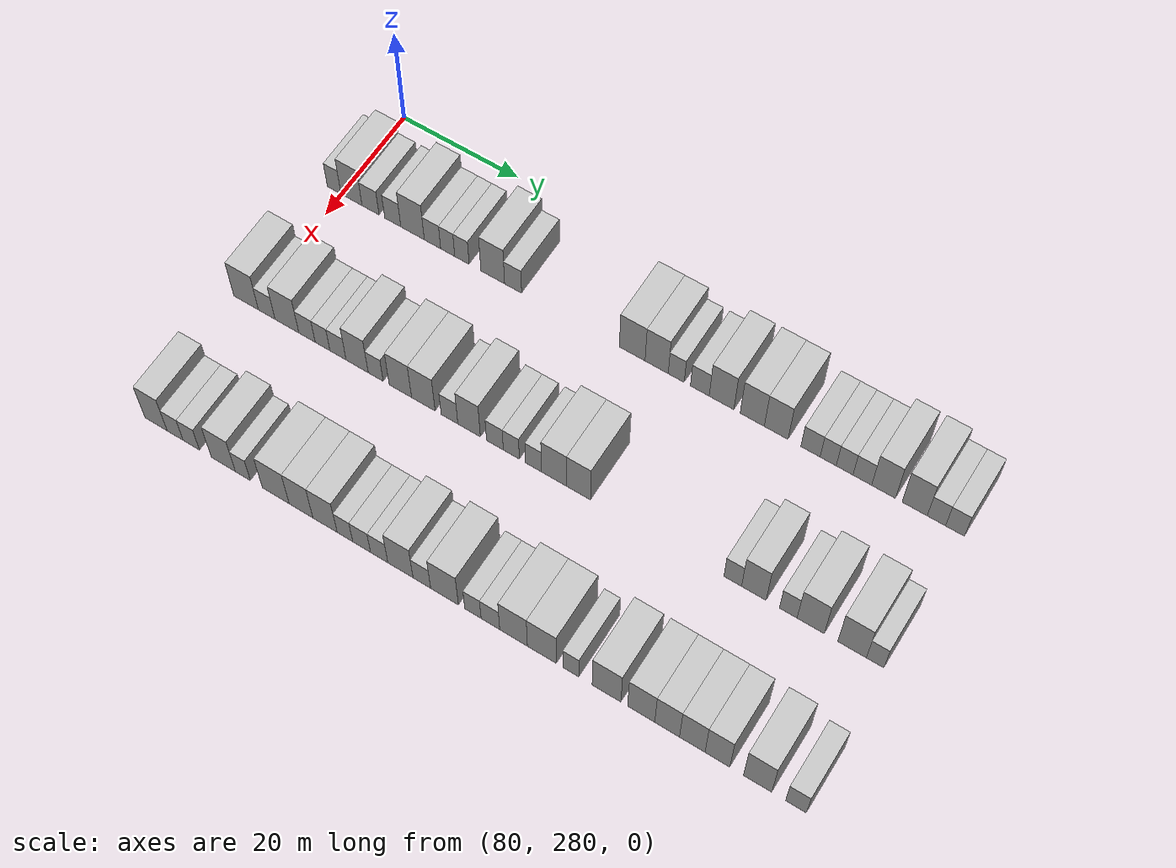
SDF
<sdf version="1.6">
 <world name="default">
  <model name="building_725">
   <static>1</static>
   <pose>91.0000 278.5867 0 0.000000 0.000000 0.000000</pose>
   <link name="link">
    <pose>0 0 3.00 0 0 0</pose>
    <collision name="collision"><geometry><box><size>10.0000 2.4089 6.0000</size></box></geometry></collision>
    <visual name="visual">
     <cast_shadows>0</cast_shadows>
     <geometry><box><size>10.0000 2.4089 6.0000</size></box></geometry>
     <material>
      <script>
       <uri>model://HANNAS_wall/materials/scripts</uri>
       <uri>model://HANNAS_wall/materials/textures</uri>
       <name>vrc/HANNAS_wall</name>
      </script>
     </material>
    </visual>
   </link>
  </model>
  <model name="building_726">
   <static>1</static>
   <pose>91.0000 281.6476 0 0.000000 0.000000 0.000000</pose>
   <link name="link">
    <pose>0 0 4.50 0 0 0</pose>
    <collision name="collision"><geometry><box><size>10.0000 3.7130 9.0000</size></box></geometry></collision>
    <visual name="visual">
     <cast_shadows>0</cast_shadows>
     <geometry><box><size>10.0000 3.7130 9.0000</size></box></geometry>
     <material>
      <script>
       <uri>model://HANNAS_wall/materials/scripts</uri>
       <uri>model://HANNAS_wall/materials/textures</uri>
       <name>vrc/HANNAS_wall</name>
      </script>
     </material>
    </visual>
   </link>
  </model>
  <model name="building_727">
   <static>1</static>
   <pose>91.0000 284.9907 0 0.000000 0.000000 0.000000</pose>
   <link name="link">
    <pose>0 0 3.00 0 0 0</pose>
    <collision name="collision"><geometry><box><size>10.0000 2.9732 6.0000</size></box></geometry></collision>
    <visual name="visual">
     <cast_shadows>0</cast_shadows>
     <geometry><box><size>10.0000 2.9732 6.0000</size></box></geometry>
     <material>
      <script>
       <uri>model://HANNAS_wall/materials/scripts</uri>
       <uri>model://HANNAS_wall/materials/textures</uri>
       <name>vrc/HANNAS_wall</name>
      </script>
     </material>
    </visual>
   </link>
  </model>
  <model name="building_728">
   <static>1</static>
   <pose>91.0000 288.8770 0 0.000000 0.000000 0.000000</pose>
   <link name="link">
    <pose>0 0 3.00 0 0 0</pose>
    <collision name="collision"><geometry><box><size>10.0000 2.7993 6.0000</size></box></geometry></collision>
    <visual name="visual">
     <cast_shadows>0</cast_shadows>
     <geometry><box><size>10.0000 2.7993 6.0000</size></box></geometry>
     <material>
      <script>
       <uri>model://HANNAS_wall/materials/scripts</uri>
       <uri>model://HANNAS_wall/materials/textures</uri>
       <name>vrc/HANNAS_wall</name>
      </script>
     </material>
    </visual>
   </link>
  </model>
  <model name="building_729">
   <static>1</static>
   <pose>91.0000 292.3071 0 0.000000 0.000000 0.000000</pose>
   <link name="link">
    <pose>0 0 4.50 0 0 0</pose>
    <collision name="collision"><geometry><box><size>10.0000 4.0610 9.0000</size></box></geometry></collision>
    <visual name="visual">
     <cast_shadows>0</cast_shadows>
     <geometry><box><size>10.0000 4.0610 9.0000</size></box></geometry>
     <material>
      <script>
       <uri>model://HANNAS_wall/materials/scripts</uri>
       <uri>model://HANNAS_wall/materials/textures</uri>
       <name>vrc/HANNAS_wall</name>
      </script>
     </material>
    </visual>
   </link>
  </model>
  <model name="building_730">
   <static>1</static>
   <pose>91.0000 295.7476 0 0.000000 0.000000 0.000000</pose>
   <link name="link">
    <pose>0 0 3.00 0 0 0</pose>
    <collision name="collision"><geometry><box><size>10.0000 2.8199 6.0000</size></box></geometry></collision>
    <visual name="visual">
     <cast_shadows>0</cast_shadows>
     <geometry><box><size>10.0000 2.8199 6.0000</size></box></geometry>
     <material>
      <script>
       <uri>model://HANNAS_wall/materials/scripts</uri>
       <uri>model://HANNAS_wall/materials/textures</uri>
       <name>vrc/HANNAS_wall</name>
      </script>
     </material>
    </visual>
   </link>
  </model>
  <model name="building_731">
   <static>1</static>
   <pose>91.0000 298.3624 0 0.000000 0.000000 0.000000</pose>
   <link name="link">
    <pose>0 0 3.00 0 0 0</pose>
    <collision name="collision"><geometry><box><size>10.0000 2.4097 6.0000</size></box></geometry></collision>
    <visual name="visual">
     <cast_shadows>0</cast_shadows>
     <geometry><box><size>10.0000 2.4097 6.0000</size></box></geometry>
     <material>
      <script>
       <uri>model://HANNAS_wall/materials/scripts</uri>
       <uri>model://HANNAS_wall/materials/textures</uri>
       <name>vrc/HANNAS_wall</name>
      </script>
     </material>
    </visual>
   </link>
  </model>
  <model name="building_732">
   <static>1</static>
   <pose>91.0000 300.7941 0 0.000000 0.000000 0.000000</pose>
   <link name="link">
    <pose>0 0 3.00 0 0 0</pose>
    <collision name="collision"><geometry><box><size>10.0000 2.4537 6.0000</size></box></geometry></collision>
    <visual name="visual">
     <cast_shadows>0</cast_shadows>
     <geometry><box><size>10.0000 2.4537 6.0000</size></box></geometry>
     <material>
      <script>
       <uri>model://HANNAS_wall/materials/scripts</uri>
       <uri>model://HANNAS_wall/materials/textures</uri>
       <name>vrc/HANNAS_wall</name>
      </script>
     </material>
    </visual>
   </link>
  </model>
  <model name="building_733">
   <static>1</static>
   <pose>91.0000 306.0276 0 0.000000 0.000000 0.000000</pose>
   <link name="link">
    <pose>0 0 4.50 0 0 0</pose>
    <collision name="collision"><geometry><box><size>10.0000 4.0134 9.0000</size></box></geometry></collision>
    <visual name="visual">
     <cast_shadows>0</cast_shadows>
     <geometry><box><size>10.0000 4.0134 9.0000</size></box></geometry>
     <material>
      <script>
       <uri>model://HANNAS_wall/materials/scripts</uri>
       <uri>model://HANNAS_wall/materials/textures</uri>
       <name>vrc/HANNAS_wall</name>
      </script>
     </material>
    </visual>
   </link>
  </model>
  <model name="building_734">
   <static>1</static>
   <pose>91.0000 309.4642 0 0.000000 0.000000 0.000000</pose>
   <link name="link">
    <pose>0 0 3.00 0 0 0</pose>
    <collision name="collision"><geometry><box><size>10.0000 2.8597 6.0000</size></box></geometry></collision>
    <visual name="visual">
     <cast_shadows>0</cast_shadows>
     <geometry><box><size>10.0000 2.8597 6.0000</size></box></geometry>
     <material>
      <script>
       <uri>model://HANNAS_wall/materials/scripts</uri>
       <uri>model://HANNAS_wall/materials/textures</uri>
       <name>vrc/HANNAS_wall</name>
      </script>
     </material>
    </visual>
   </link>
  </model>
  <model name="building_735">
   <static>1</static>
   <pose>91.0000 329.1740 0 0.000000 0.000000 0.000000</pose>
   <link name="link">
    <pose>0 0 4.50 0 0 0</pose>
    <collision name="collision"><geometry><box><size>10.0000 4.1867 9.0000</size></box></geometry></collision>
    <visual name="visual">
     <cast_shadows>0</cast_shadows>
     <geometry><box><size>10.0000 4.1867 9.0000</size></box></geometry>
     <material>
      <script>
       <uri>model://HANNAS_wall/materials/scripts</uri>
       <uri>model://HANNAS_wall/materials/textures</uri>
       <name>vrc/HANNAS_wall</name>
      </script>
     </material>
    </visual>
   </link>
  </model>
  <model name="building_736">
   <static>1</static>
   <pose>91.0000 333.1456 0 0.000000 0.000000 0.000000</pose>
   <link name="link">
    <pose>0 0 4.50 0 0 0</pose>
    <collision name="collision"><geometry><box><size>10.0000 3.7566 9.0000</size></box></geometry></collision>
    <visual name="visual">
     <cast_shadows>0</cast_shadows>
     <geometry><box><size>10.0000 3.7566 9.0000</size></box></geometry>
     <material>
      <script>
       <uri>model://HANNAS_wall/materials/scripts</uri>
       <uri>model://HANNAS_wall/materials/textures</uri>
       <name>vrc/HANNAS_wall</name>
      </script>
     </material>
    </visual>
   </link>
  </model>
  <model name="building_737">
   <static>1</static>
   <pose>91.0000 336.3077 0 0.000000 0.000000 0.000000</pose>
   <link name="link">
    <pose>0 0 3.00 0 0 0</pose>
    <collision name="collision"><geometry><box><size>10.0000 2.5676 6.0000</size></box></geometry></collision>
    <visual name="visual">
     <cast_shadows>0</cast_shadows>
     <geometry><box><size>10.0000 2.5676 6.0000</size></box></geometry>
     <material>
      <script>
       <uri>model://HANNAS_wall/materials/scripts</uri>
       <uri>model://HANNAS_wall/materials/textures</uri>
       <name>vrc/HANNAS_wall</name>
      </script>
     </material>
    </visual>
   </link>
  </model>
  <model name="building_738">
   <static>1</static>
   <pose>91.0000 340.0848 0 0.000000 0.000000 0.000000</pose>
   <link name="link">
    <pose>0 0 3.00 0 0 0</pose>
    <collision name="collision"><geometry><box><size>10.0000 2.9867 6.0000</size></box></geometry></collision>
    <visual name="visual">
     <cast_shadows>0</cast_shadows>
     <geometry><box><size>10.0000 2.9867 6.0000</size></box></geometry>
     <material>
      <script>
       <uri>model://HANNAS_wall/materials/scripts</uri>
       <uri>model://HANNAS_wall/materials/textures</uri>
       <name>vrc/HANNAS_wall</name>
      </script>
     </material>
    </visual>
   </link>
  </model>
  <model name="building_739">
   <static>1</static>
   <pose>91.0000 343.5405 0 0.000000 0.000000 0.000000</pose>
   <link name="link">
    <pose>0 0 4.50 0 0 0</pose>
    <collision name="collision"><geometry><box><size>10.0000 3.9246 9.0000</size></box></geometry></collision>
    <visual name="visual">
     <cast_shadows>0</cast_shadows>
     <geometry><box><size>10.0000 3.9246 9.0000</size></box></geometry>
     <material>
      <script>
       <uri>model://HANNAS_wall/materials/scripts</uri>
       <uri>model://HANNAS_wall/materials/textures</uri>
       <name>vrc/HANNAS_wall</name>
      </script>
     </material>
    </visual>
   </link>
  </model>
  <model name="building_740">
   <static>1</static>
   <pose>91.0000 348.4029 0 0.000000 0.000000 0.000000</pose>
   <link name="link">
    <pose>0 0 4.50 0 0 0</pose>
    <collision name="collision"><geometry><box><size>10.0000 3.8002 9.0000</size></box></geometry></collision>
    <visual name="visual">
     <cast_shadows>0</cast_shadows>
     <geometry><box><size>10.0000 3.8002 9.0000</size></box></geometry>
     <material>
      <script>
       <uri>model://HANNAS_wall/materials/scripts</uri>
       <uri>model://HANNAS_wall/materials/textures</uri>
       <name>vrc/HANNAS_wall</name>
      </script>
     </material>
    </visual>
   </link>
  </model>
  <model name="building_741">
   <static>1</static>
   <pose>91.0000 352.1643 0 0.000000 0.000000 0.000000</pose>
   <link name="link">
    <pose>0 0 4.50 0 0 0</pose>
    <collision name="collision"><geometry><box><size>10.0000 3.7226 9.0000</size></box></geometry></collision>
    <visual name="visual">
     <cast_shadows>0</cast_shadows>
     <geometry><box><size>10.0000 3.7226 9.0000</size></box></geometry>
     <material>
      <script>
       <uri>model://HANNAS_wall/materials/scripts</uri>
       <uri>model://HANNAS_wall/materials/textures</uri>
       <name>vrc/HANNAS_wall</name>
      </script>
     </material>
    </visual>
   </link>
  </model>
  <model name="building_742">
   <static>1</static>
   <pose>91.0000 357.5146 0 0.000000 0.000000 0.000000</pose>
   <link name="link">
    <pose>0 0 3.00 0 0 0</pose>
    <collision name="collision"><geometry><box><size>10.0000 2.9780 6.0000</size></box></geometry></collision>
    <visual name="visual">
     <cast_shadows>0</cast_shadows>
     <geometry><box><size>10.0000 2.9780 6.0000</size></box></geometry>
     <material>
      <script>
       <uri>model://HANNAS_wall/materials/scripts</uri>
       <uri>model://HANNAS_wall/materials/textures</uri>
       <name>vrc/HANNAS_wall</name>
      </script>
     </material>
    </visual>
   </link>
  </model>
  <model name="building_743">
   <static>1</static>
   <pose>91.0000 360.2496 0 0.000000 0.000000 0.000000</pose>
   <link name="link">
    <pose>0 0 3.00 0 0 0</pose>
    <collision name="collision"><geometry><box><size>10.0000 2.4922 6.0000</size></box></geometry></collision>
    <visual name="visual">
     <cast_shadows>0</cast_shadows>
     <geometry><box><size>10.0000 2.4922 6.0000</size></box></geometry>
     <material>
      <script>
       <uri>model://HANNAS_wall/materials/scripts</uri>
       <uri>model://HANNAS_wall/materials/textures</uri>
       <name>vrc/HANNAS_wall</name>
      </script>
     </material>
    </visual>
   </link>
  </model>
  <model name="building_744">
   <static>1</static>
   <pose>91.0000 362.7828 0 0.000000 0.000000 0.000000</pose>
   <link name="link">
    <pose>0 0 3.00 0 0 0</pose>
    <collision name="collision"><geometry><box><size>10.0000 2.5742 6.0000</size></box></geometry></collision>
    <visual name="visual">
     <cast_shadows>0</cast_shadows>
     <geometry><box><size>10.0000 2.5742 6.0000</size></box></geometry>
     <material>
      <script>
       <uri>model://HANNAS_wall/materials/scripts</uri>
       <uri>model://HANNAS_wall/materials/textures</uri>
       <name>vrc/HANNAS_wall</name>
      </script>
     </material>
    </visual>
   </link>
  </model>
  <model name="building_745">
   <static>1</static>
   <pose>91.0000 365.4979 0 0.000000 0.000000 0.000000</pose>
   <link name="link">
    <pose>0 0 3.00 0 0 0</pose>
    <collision name="collision"><geometry><box><size>10.0000 2.8559 6.0000</size></box></geometry></collision>
    <visual name="visual">
     <cast_shadows>0</cast_shadows>
     <geometry><box><size>10.0000 2.8559 6.0000</size></box></geometry>
     <material>
      <script>
       <uri>model://HANNAS_wall/materials/scripts</uri>
       <uri>model://HANNAS_wall/materials/textures</uri>
       <name>vrc/HANNAS_wall</name>
      </script>
     </material>
    </visual>
   </link>
  </model>
  <model name="building_746">
   <static>1</static>
   <pose>91.0000 368.7312 0 0.000000 0.000000 0.000000</pose>
   <link name="link">
    <pose>0 0 4.50 0 0 0</pose>
    <collision name="collision"><geometry><box><size>10.0000 3.6105 9.0000</size></box></geometry></collision>
    <visual name="visual">
     <cast_shadows>0</cast_shadows>
     <geometry><box><size>10.0000 3.6105 9.0000</size></box></geometry>
     <material>
      <script>
       <uri>model://HANNAS_wall/materials/scripts</uri>
       <uri>model://HANNAS_wall/materials/textures</uri>
       <name>vrc/HANNAS_wall</name>
      </script>
     </material>
    </visual>
   </link>
  </model>
  <model name="building_747">
   <static>1</static>
   <pose>91.0000 373.4357 0 0.000000 0.000000 0.000000</pose>
   <link name="link">
    <pose>0 0 4.50 0 0 0</pose>
    <collision name="collision"><geometry><box><size>10.0000 3.7985 9.0000</size></box></geometry></collision>
    <visual name="visual">
     <cast_shadows>0</cast_shadows>
     <geometry><box><size>10.0000 3.7985 9.0000</size></box></geometry>
     <material>
      <script>
       <uri>model://HANNAS_wall/materials/scripts</uri>
       <uri>model://HANNAS_wall/materials/textures</uri>
       <name>vrc/HANNAS_wall</name>
      </script>
     </material>
    </visual>
   </link>
  </model>
  <model name="building_748">
   <static>1</static>
   <pose>91.0000 376.7115 0 0.000000 0.000000 0.000000</pose>
   <link name="link">
    <pose>0 0 3.00 0 0 0</pose>
    <collision name="collision"><geometry><box><size>10.0000 2.7532 6.0000</size></box></geometry></collision>
    <visual name="visual">
     <cast_shadows>0</cast_shadows>
     <geometry><box><size>10.0000 2.7532 6.0000</size></box></geometry>
     <material>
      <script>
       <uri>model://HANNAS_wall/materials/scripts</uri>
       <uri>model://HANNAS_wall/materials/textures</uri>
       <name>vrc/HANNAS_wall</name>
      </script>
     </material>
    </visual>
   </link>
  </model>
  <model name="building_749">
   <static>1</static>
   <pose>91.0000 379.5036 0 0.000000 0.000000 0.000000</pose>
   <link name="link">
    <pose>0 0 3.00 0 0 0</pose>
    <collision name="collision"><geometry><box><size>10.0000 2.8309 6.0000</size></box></geometry></collision>
    <visual name="visual">
     <cast_shadows>0</cast_shadows>
     <geometry><box><size>10.0000 2.8309 6.0000</size></box></geometry>
     <material>
      <script>
       <uri>model://HANNAS_wall/materials/scripts</uri>
       <uri>model://HANNAS_wall/materials/textures</uri>
       <name>vrc/HANNAS_wall</name>
      </script>
     </material>
    </visual>
   </link>
  </model>
  <model name="building_906">
   <static>1</static>
   <pose>113.0000 278.9612 0 0.000000 0.000000 0.000000</pose>
   <link name="link">
    <pose>0 0 4.50 0 0 0</pose>
    <collision name="collision"><geometry><box><size>10.0000 4.2803 9.0000</size></box></geometry></collision>
    <visual name="visual">
     <cast_shadows>0</cast_shadows>
     <geometry><box><size>10.0000 4.2803 9.0000</size></box></geometry>
     <material>
      <script>
       <uri>model://HANNAS_wall/materials/scripts</uri>
       <uri>model://HANNAS_wall/materials/textures</uri>
       <name>vrc/HANNAS_wall</name>
      </script>
     </material>
    </visual>
   </link>
  </model>
  <model name="building_907">
   <static>1</static>
   <pose>113.0000 282.5423 0 0.000000 0.000000 0.000000</pose>
   <link name="link">
    <pose>0 0 3.00 0 0 0</pose>
    <collision name="collision"><geometry><box><size>10.0000 2.8819 6.0000</size></box></geometry></collision>
    <visual name="visual">
     <cast_shadows>0</cast_shadows>
     <geometry><box><size>10.0000 2.8819 6.0000</size></box></geometry>
     <material>
      <script>
       <uri>model://HANNAS_wall/materials/scripts</uri>
       <uri>model://HANNAS_wall/materials/textures</uri>
       <name>vrc/HANNAS_wall</name>
      </script>
     </material>
    </visual>
   </link>
  </model>
  <model name="building_908">
   <static>1</static>
   <pose>113.0000 286.0328 0 0.000000 0.000000 0.000000</pose>
   <link name="link">
    <pose>0 0 4.50 0 0 0</pose>
    <collision name="collision"><geometry><box><size>10.0000 4.0991 9.0000</size></box></geometry></collision>
    <visual name="visual">
     <cast_shadows>0</cast_shadows>
     <geometry><box><size>10.0000 4.0991 9.0000</size></box></geometry>
     <material>
      <script>
       <uri>model://HANNAS_wall/materials/scripts</uri>
       <uri>model://HANNAS_wall/materials/textures</uri>
       <name>vrc/HANNAS_wall</name>
      </script>
     </material>
    </visual>
   </link>
  </model>
  <model name="building_909">
   <static>1</static>
   <pose>113.0000 289.4751 0 0.000000 0.000000 0.000000</pose>
   <link name="link">
    <pose>0 0 3.00 0 0 0</pose>
    <collision name="collision"><geometry><box><size>10.0000 2.7854 6.0000</size></box></geometry></collision>
    <visual name="visual">
     <cast_shadows>0</cast_shadows>
     <geometry><box><size>10.0000 2.7854 6.0000</size></box></geometry>
     <material>
      <script>
       <uri>model://HANNAS_wall/materials/scripts</uri>
       <uri>model://HANNAS_wall/materials/textures</uri>
       <name>vrc/HANNAS_wall</name>
      </script>
     </material>
    </visual>
   </link>
  </model>
  <model name="building_910">
   <static>1</static>
   <pose>113.0000 292.1322 0 0.000000 0.000000 0.000000</pose>
   <link name="link">
    <pose>0 0 3.00 0 0 0</pose>
    <collision name="collision"><geometry><box><size>10.0000 2.5288 6.0000</size></box></geometry></collision>
    <visual name="visual">
     <cast_shadows>0</cast_shadows>
     <geometry><box><size>10.0000 2.5288 6.0000</size></box></geometry>
     <material>
      <script>
       <uri>model://HANNAS_wall/materials/scripts</uri>
       <uri>model://HANNAS_wall/materials/textures</uri>
       <name>vrc/HANNAS_wall</name>
      </script>
     </material>
    </visual>
   </link>
  </model>
  <model name="building_911">
   <static>1</static>
   <pose>113.0000 294.7640 0 0.000000 0.000000 0.000000</pose>
   <link name="link">
    <pose>0 0 3.00 0 0 0</pose>
    <collision name="collision"><geometry><box><size>10.0000 2.7346 6.0000</size></box></geometry></collision>
    <visual name="visual">
     <cast_shadows>0</cast_shadows>
     <geometry><box><size>10.0000 2.7346 6.0000</size></box></geometry>
     <material>
      <script>
       <uri>model://HANNAS_wall/materials/scripts</uri>
       <uri>model://HANNAS_wall/materials/textures</uri>
       <name>vrc/HANNAS_wall</name>
      </script>
     </material>
    </visual>
   </link>
  </model>
  <model name="building_912">
   <static>1</static>
   <pose>113.0000 297.9934 0 0.000000 0.000000 0.000000</pose>
   <link name="link">
    <pose>0 0 4.50 0 0 0</pose>
    <collision name="collision"><geometry><box><size>10.0000 3.7242 9.0000</size></box></geometry></collision>
    <visual name="visual">
     <cast_shadows>0</cast_shadows>
     <geometry><box><size>10.0000 3.7242 9.0000</size></box></geometry>
     <material>
      <script>
       <uri>model://HANNAS_wall/materials/scripts</uri>
       <uri>model://HANNAS_wall/materials/textures</uri>
       <name>vrc/HANNAS_wall</name>
      </script>
     </material>
    </visual>
   </link>
  </model>
  <model name="building_913">
   <static>1</static>
   <pose>113.0000 301.1163 0 0.000000 0.000000 0.000000</pose>
   <link name="link">
    <pose>0 0 3.00 0 0 0</pose>
    <collision name="collision"><geometry><box><size>10.0000 2.5217 6.0000</size></box></geometry></collision>
    <visual name="visual">
     <cast_shadows>0</cast_shadows>
     <geometry><box><size>10.0000 2.5217 6.0000</size></box></geometry>
     <material>
      <script>
       <uri>model://HANNAS_wall/materials/scripts</uri>
       <uri>model://HANNAS_wall/materials/textures</uri>
       <name>vrc/HANNAS_wall</name>
      </script>
     </material>
    </visual>
   </link>
  </model>
  <model name="building_914">
   <static>1</static>
   <pose>113.0000 305.2380 0 0.000000 0.000000 0.000000</pose>
   <link name="link">
    <pose>0 0 4.50 0 0 0</pose>
    <collision name="collision"><geometry><box><size>10.0000 3.7215 9.0000</size></box></geometry></collision>
    <visual name="visual">
     <cast_shadows>0</cast_shadows>
     <geometry><box><size>10.0000 3.7215 9.0000</size></box></geometry>
     <material>
      <script>
       <uri>model://HANNAS_wall/materials/scripts</uri>
       <uri>model://HANNAS_wall/materials/textures</uri>
       <name>vrc/HANNAS_wall</name>
      </script>
     </material>
    </visual>
   </link>
  </model>
  <model name="building_915">
   <static>1</static>
   <pose>113.0000 309.0470 0 0.000000 0.000000 0.000000</pose>
   <link name="link">
    <pose>0 0 4.50 0 0 0</pose>
    <collision name="collision"><geometry><box><size>10.0000 3.8965 9.0000</size></box></geometry></collision>
    <visual name="visual">
     <cast_shadows>0</cast_shadows>
     <geometry><box><size>10.0000 3.8965 9.0000</size></box></geometry>
     <material>
      <script>
       <uri>model://HANNAS_wall/materials/scripts</uri>
       <uri>model://HANNAS_wall/materials/textures</uri>
       <name>vrc/HANNAS_wall</name>
      </script>
     </material>
    </visual>
   </link>
  </model>
  <model name="building_916">
   <static>1</static>
   <pose>113.0000 313.3662 0 0.000000 0.000000 0.000000</pose>
   <link name="link">
    <pose>0 0 3.00 0 0 0</pose>
    <collision name="collision"><geometry><box><size>10.0000 2.7420 6.0000</size></box></geometry></collision>
    <visual name="visual">
     <cast_shadows>0</cast_shadows>
     <geometry><box><size>10.0000 2.7420 6.0000</size></box></geometry>
     <material>
      <script>
       <uri>model://HANNAS_wall/materials/scripts</uri>
       <uri>model://HANNAS_wall/materials/textures</uri>
       <name>vrc/HANNAS_wall</name>
      </script>
     </material>
    </visual>
   </link>
  </model>
  <model name="building_917">
   <static>1</static>
   <pose>113.0000 316.5782 0 0.000000 0.000000 0.000000</pose>
   <link name="link">
    <pose>0 0 4.50 0 0 0</pose>
    <collision name="collision"><geometry><box><size>10.0000 3.6819 9.0000</size></box></geometry></collision>
    <visual name="visual">
     <cast_shadows>0</cast_shadows>
     <geometry><box><size>10.0000 3.6819 9.0000</size></box></geometry>
     <material>
      <script>
       <uri>model://HANNAS_wall/materials/scripts</uri>
       <uri>model://HANNAS_wall/materials/textures</uri>
       <name>vrc/HANNAS_wall</name>
      </script>
     </material>
    </visual>
   </link>
  </model>
  <model name="building_918">
   <static>1</static>
   <pose>113.0000 320.7767 0 0.000000 0.000000 0.000000</pose>
   <link name="link">
    <pose>0 0 3.00 0 0 0</pose>
    <collision name="collision"><geometry><box><size>10.0000 2.7151 6.0000</size></box></geometry></collision>
    <visual name="visual">
     <cast_shadows>0</cast_shadows>
     <geometry><box><size>10.0000 2.7151 6.0000</size></box></geometry>
     <material>
      <script>
       <uri>model://HANNAS_wall/materials/scripts</uri>
       <uri>model://HANNAS_wall/materials/textures</uri>
       <name>vrc/HANNAS_wall</name>
      </script>
     </material>
    </visual>
   </link>
  </model>
  <model name="building_919">
   <static>1</static>
   <pose>113.0000 323.4299 0 0.000000 0.000000 0.000000</pose>
   <link name="link">
    <pose>0 0 3.00 0 0 0</pose>
    <collision name="collision"><geometry><box><size>10.0000 2.5915 6.0000</size></box></geometry></collision>
    <visual name="visual">
     <cast_shadows>0</cast_shadows>
     <geometry><box><size>10.0000 2.5915 6.0000</size></box></geometry>
     <material>
      <script>
       <uri>model://HANNAS_wall/materials/scripts</uri>
       <uri>model://HANNAS_wall/materials/textures</uri>
       <name>vrc/HANNAS_wall</name>
      </script>
     </material>
    </visual>
   </link>
  </model>
  <model name="building_920">
   <static>1</static>
   <pose>113.0000 327.0049 0 0.000000 0.000000 0.000000</pose>
   <link name="link">
    <pose>0 0 3.00 0 0 0</pose>
    <collision name="collision"><geometry><box><size>10.0000 2.5584 6.0000</size></box></geometry></collision>
    <visual name="visual">
     <cast_shadows>0</cast_shadows>
     <geometry><box><size>10.0000 2.5584 6.0000</size></box></geometry>
     <material>
      <script>
       <uri>model://HANNAS_wall/materials/scripts</uri>
       <uri>model://HANNAS_wall/materials/textures</uri>
       <name>vrc/HANNAS_wall</name>
      </script>
     </material>
    </visual>
   </link>
  </model>
  <model name="building_921">
   <static>1</static>
   <pose>113.0000 330.2685 0 0.000000 0.000000 0.000000</pose>
   <link name="link">
    <pose>0 0 4.50 0 0 0</pose>
    <collision name="collision"><geometry><box><size>10.0000 3.9688 9.0000</size></box></geometry></collision>
    <visual name="visual">
     <cast_shadows>0</cast_shadows>
     <geometry><box><size>10.0000 3.9688 9.0000</size></box></geometry>
     <material>
      <script>
       <uri>model://HANNAS_wall/materials/scripts</uri>
       <uri>model://HANNAS_wall/materials/textures</uri>
       <name>vrc/HANNAS_wall</name>
      </script>
     </material>
    </visual>
   </link>
  </model>
  <model name="building_922">
   <static>1</static>
   <pose>113.0000 334.1672 0 0.000000 0.000000 0.000000</pose>
   <link name="link">
    <pose>0 0 4.50 0 0 0</pose>
    <collision name="collision"><geometry><box><size>10.0000 3.8287 9.0000</size></box></geometry></collision>
    <visual name="visual">
     <cast_shadows>0</cast_shadows>
     <geometry><box><size>10.0000 3.8287 9.0000</size></box></geometry>
     <material>
      <script>
       <uri>model://HANNAS_wall/materials/scripts</uri>
       <uri>model://HANNAS_wall/materials/textures</uri>
       <name>vrc/HANNAS_wall</name>
      </script>
     </material>
    </visual>
   </link>
  </model>
  <model name="building_923">
   <static>1</static>
   <pose>113.0000 358.1043 0 0.000000 0.000000 0.000000</pose>
   <link name="link">
    <pose>0 0 3.00 0 0 0</pose>
    <collision name="collision"><geometry><box><size>10.0000 2.6818 6.0000</size></box></geometry></collision>
    <visual name="visual">
     <cast_shadows>0</cast_shadows>
     <geometry><box><size>10.0000 2.6818 6.0000</size></box></geometry>
     <material>
      <script>
       <uri>model://HANNAS_wall/materials/scripts</uri>
       <uri>model://HANNAS_wall/materials/textures</uri>
       <name>vrc/HANNAS_wall</name>
      </script>
     </material>
    </visual>
   </link>
  </model>
  <model name="building_924">
   <static>1</static>
   <pose>113.0000 361.3011 0 0.000000 0.000000 0.000000</pose>
   <link name="link">
    <pose>0 0 4.50 0 0 0</pose>
    <collision name="collision"><geometry><box><size>10.0000 3.7118 9.0000</size></box></geometry></collision>
    <visual name="visual">
     <cast_shadows>0</cast_shadows>
     <geometry><box><size>10.0000 3.7118 9.0000</size></box></geometry>
     <material>
      <script>
       <uri>model://HANNAS_wall/materials/scripts</uri>
       <uri>model://HANNAS_wall/materials/textures</uri>
       <name>vrc/HANNAS_wall</name>
      </script>
     </material>
    </visual>
   </link>
  </model>
  <model name="building_925">
   <static>1</static>
   <pose>113.0000 366.4802 0 0.000000 0.000000 0.000000</pose>
   <link name="link">
    <pose>0 0 3.00 0 0 0</pose>
    <collision name="collision"><geometry><box><size>10.0000 2.6464 6.0000</size></box></geometry></collision>
    <visual name="visual">
     <cast_shadows>0</cast_shadows>
     <geometry><box><size>10.0000 2.6464 6.0000</size></box></geometry>
     <material>
      <script>
       <uri>model://HANNAS_wall/materials/scripts</uri>
       <uri>model://HANNAS_wall/materials/textures</uri>
       <name>vrc/HANNAS_wall</name>
      </script>
     </material>
    </visual>
   </link>
  </model>
  <model name="building_926">
   <static>1</static>
   <pose>113.0000 369.8244 0 0.000000 0.000000 0.000000</pose>
   <link name="link">
    <pose>0 0 4.50 0 0 0</pose>
    <collision name="collision"><geometry><box><size>10.0000 4.0421 9.0000</size></box></geometry></collision>
    <visual name="visual">
     <cast_shadows>0</cast_shadows>
     <geometry><box><size>10.0000 4.0421 9.0000</size></box></geometry>
     <material>
      <script>
       <uri>model://HANNAS_wall/materials/scripts</uri>
       <uri>model://HANNAS_wall/materials/textures</uri>
       <name>vrc/HANNAS_wall</name>
      </script>
     </material>
    </visual>
   </link>
  </model>
  <model name="building_927">
   <static>1</static>
   <pose>113.0000 375.9470 0 0.000000 0.000000 0.000000</pose>
   <link name="link">
    <pose>0 0 4.50 0 0 0</pose>
    <collision name="collision"><geometry><box><size>10.0000 4.2032 9.0000</size></box></geometry></collision>
    <visual name="visual">
     <cast_shadows>0</cast_shadows>
     <geometry><box><size>10.0000 4.2032 9.0000</size></box></geometry>
     <material>
      <script>
       <uri>model://HANNAS_wall/materials/scripts</uri>
       <uri>model://HANNAS_wall/materials/textures</uri>
       <name>vrc/HANNAS_wall</name>
      </script>
     </material>
    </visual>
   </link>
  </model>
  <model name="building_928">
   <static>1</static>
   <pose>113.0000 379.3327 0 0.000000 0.000000 0.000000</pose>
   <link name="link">
    <pose>0 0 3.00 0 0 0</pose>
    <collision name="collision"><geometry><box><size>10.0000 2.5681 6.0000</size></box></geometry></collision>
    <visual name="visual">
     <cast_shadows>0</cast_shadows>
     <geometry><box><size>10.0000 2.5681 6.0000</size></box></geometry>
     <material>
      <script>
       <uri>model://HANNAS_wall/materials/scripts</uri>
       <uri>model://HANNAS_wall/materials/textures</uri>
       <name>vrc/HANNAS_wall</name>
      </script>
     </material>
    </visual>
   </link>
  </model>
  <model name="building_1090">
   <static>1</static>
   <pose>135.0000 279.8990 0 0.000000 0.000000 0.000000</pose>
   <link name="link">
    <pose>0 0 4.50 0 0 0</pose>
    <collision name="collision"><geometry><box><size>10.0000 3.8144 9.0000</size></box></geometry></collision>
    <visual name="visual">
     <cast_shadows>0</cast_shadows>
     <geometry><box><size>10.0000 3.8144 9.0000</size></box></geometry>
     <material>
      <script>
       <uri>model://HANNAS_wall/materials/scripts</uri>
       <uri>model://HANNAS_wall/materials/textures</uri>
       <name>vrc/HANNAS_wall</name>
      </script>
     </material>
    </visual>
   </link>
  </model>
  <model name="building_1091">
   <static>1</static>
   <pose>135.0000 283.1639 0 0.000000 0.000000 0.000000</pose>
   <link name="link">
    <pose>0 0 3.00 0 0 0</pose>
    <collision name="collision"><geometry><box><size>10.0000 2.7153 6.0000</size></box></geometry></collision>
    <visual name="visual">
     <cast_shadows>0</cast_shadows>
     <geometry><box><size>10.0000 2.7153 6.0000</size></box></geometry>
     <material>
      <script>
       <uri>model://HANNAS_wall/materials/scripts</uri>
       <uri>model://HANNAS_wall/materials/textures</uri>
       <name>vrc/HANNAS_wall</name>
      </script>
     </material>
    </visual>
   </link>
  </model>
  <model name="building_1092">
   <static>1</static>
   <pose>135.0000 285.9082 0 0.000000 0.000000 0.000000</pose>
   <link name="link">
    <pose>0 0 3.00 0 0 0</pose>
    <collision name="collision"><geometry><box><size>10.0000 2.7733 6.0000</size></box></geometry></collision>
    <visual name="visual">
     <cast_shadows>0</cast_shadows>
     <geometry><box><size>10.0000 2.7733 6.0000</size></box></geometry>
     <material>
      <script>
       <uri>model://HANNAS_wall/materials/scripts</uri>
       <uri>model://HANNAS_wall/materials/textures</uri>
       <name>vrc/HANNAS_wall</name>
      </script>
     </material>
    </visual>
   </link>
  </model>
  <model name="building_1093">
   <static>1</static>
   <pose>135.0000 291.3078 0 0.000000 0.000000 0.000000</pose>
   <link name="link">
    <pose>0 0 4.50 0 0 0</pose>
    <collision name="collision"><geometry><box><size>10.0000 4.0260 9.0000</size></box></geometry></collision>
    <visual name="visual">
     <cast_shadows>0</cast_shadows>
     <geometry><box><size>10.0000 4.0260 9.0000</size></box></geometry>
     <material>
      <script>
       <uri>model://HANNAS_wall/materials/scripts</uri>
       <uri>model://HANNAS_wall/materials/textures</uri>
       <name>vrc/HANNAS_wall</name>
      </script>
     </material>
    </visual>
   </link>
  </model>
  <model name="building_1094">
   <static>1</static>
   <pose>135.0000 294.5711 0 0.000000 0.000000 0.000000</pose>
   <link name="link">
    <pose>0 0 3.00 0 0 0</pose>
    <collision name="collision"><geometry><box><size>10.0000 2.5005 6.0000</size></box></geometry></collision>
    <visual name="visual">
     <cast_shadows>0</cast_shadows>
     <geometry><box><size>10.0000 2.5005 6.0000</size></box></geometry>
     <material>
      <script>
       <uri>model://HANNAS_wall/materials/scripts</uri>
       <uri>model://HANNAS_wall/materials/textures</uri>
       <name>vrc/HANNAS_wall</name>
      </script>
     </material>
    </visual>
   </link>
  </model>
  <model name="building_1095">
   <static>1</static>
   <pose>135.0000 300.0393 0 0.000000 0.000000 0.000000</pose>
   <link name="link">
    <pose>0 0 4.50 0 0 0</pose>
    <collision name="collision"><geometry><box><size>10.0000 4.4359 9.0000</size></box></geometry></collision>
    <visual name="visual">
     <cast_shadows>0</cast_shadows>
     <geometry><box><size>10.0000 4.4359 9.0000</size></box></geometry>
     <material>
      <script>
       <uri>model://HANNAS_wall/materials/scripts</uri>
       <uri>model://HANNAS_wall/materials/textures</uri>
       <name>vrc/HANNAS_wall</name>
      </script>
     </material>
    </visual>
   </link>
  </model>
  <model name="building_1096">
   <static>1</static>
   <pose>135.0000 304.2041 0 0.000000 0.000000 0.000000</pose>
   <link name="link">
    <pose>0 0 4.50 0 0 0</pose>
    <collision name="collision"><geometry><box><size>10.0000 3.8938 9.0000</size></box></geometry></collision>
    <visual name="visual">
     <cast_shadows>0</cast_shadows>
     <geometry><box><size>10.0000 3.8938 9.0000</size></box></geometry>
     <material>
      <script>
       <uri>model://HANNAS_wall/materials/scripts</uri>
       <uri>model://HANNAS_wall/materials/textures</uri>
       <name>vrc/HANNAS_wall</name>
      </script>
     </material>
    </visual>
   </link>
  </model>
  <model name="building_1097">
   <static>1</static>
   <pose>135.0000 308.1311 0 0.000000 0.000000 0.000000</pose>
   <link name="link">
    <pose>0 0 4.50 0 0 0</pose>
    <collision name="collision"><geometry><box><size>10.0000 3.9602 9.0000</size></box></geometry></collision>
    <visual name="visual">
     <cast_shadows>0</cast_shadows>
     <geometry><box><size>10.0000 3.9602 9.0000</size></box></geometry>
     <material>
      <script>
       <uri>model://HANNAS_wall/materials/scripts</uri>
       <uri>model://HANNAS_wall/materials/textures</uri>
       <name>vrc/HANNAS_wall</name>
      </script>
     </material>
    </visual>
   </link>
  </model>
  <model name="building_1098">
   <static>1</static>
   <pose>135.0000 311.3727 0 0.000000 0.000000 0.000000</pose>
   <link name="link">
    <pose>0 0 3.00 0 0 0</pose>
    <collision name="collision"><geometry><box><size>10.0000 2.5230 6.0000</size></box></geometry></collision>
    <visual name="visual">
     <cast_shadows>0</cast_shadows>
     <geometry><box><size>10.0000 2.5230 6.0000</size></box></geometry>
     <material>
      <script>
       <uri>model://HANNAS_wall/materials/scripts</uri>
       <uri>model://HANNAS_wall/materials/textures</uri>
       <name>vrc/HANNAS_wall</name>
      </script>
     </material>
    </visual>
   </link>
  </model>
  <model name="building_1099">
   <static>1</static>
   <pose>135.0000 314.0724 0 0.000000 0.000000 0.000000</pose>
   <link name="link">
    <pose>0 0 3.00 0 0 0</pose>
    <collision name="collision"><geometry><box><size>10.0000 2.8765 6.0000</size></box></geometry></collision>
    <visual name="visual">
     <cast_shadows>0</cast_shadows>
     <geometry><box><size>10.0000 2.8765 6.0000</size></box></geometry>
     <material>
      <script>
       <uri>model://HANNAS_wall/materials/scripts</uri>
       <uri>model://HANNAS_wall/materials/textures</uri>
       <name>vrc/HANNAS_wall</name>
      </script>
     </material>
    </visual>
   </link>
  </model>
  <model name="building_1100">
   <static>1</static>
   <pose>135.0000 316.8940 0 0.000000 0.000000 0.000000</pose>
   <link name="link">
    <pose>0 0 3.00 0 0 0</pose>
    <collision name="collision"><geometry><box><size>10.0000 2.7667 6.0000</size></box></geometry></collision>
    <visual name="visual">
     <cast_shadows>0</cast_shadows>
     <geometry><box><size>10.0000 2.7667 6.0000</size></box></geometry>
     <material>
      <script>
       <uri>model://HANNAS_wall/materials/scripts</uri>
       <uri>model://HANNAS_wall/materials/textures</uri>
       <name>vrc/HANNAS_wall</name>
      </script>
     </material>
    </visual>
   </link>
  </model>
  <model name="building_1101">
   <static>1</static>
   <pose>135.0000 320.2885 0 0.000000 0.000000 0.000000</pose>
   <link name="link">
    <pose>0 0 4.50 0 0 0</pose>
    <collision name="collision"><geometry><box><size>10.0000 4.0223 9.0000</size></box></geometry></collision>
    <visual name="visual">
     <cast_shadows>0</cast_shadows>
     <geometry><box><size>10.0000 4.0223 9.0000</size></box></geometry>
     <material>
      <script>
       <uri>model://HANNAS_wall/materials/scripts</uri>
       <uri>model://HANNAS_wall/materials/textures</uri>
       <name>vrc/HANNAS_wall</name>
      </script>
     </material>
    </visual>
   </link>
  </model>
  <model name="building_1102">
   <static>1</static>
   <pose>135.0000 323.6980 0 0.000000 0.000000 0.000000</pose>
   <link name="link">
    <pose>0 0 3.00 0 0 0</pose>
    <collision name="collision"><geometry><box><size>10.0000 2.7968 6.0000</size></box></geometry></collision>
    <visual name="visual">
     <cast_shadows>0</cast_shadows>
     <geometry><box><size>10.0000 2.7968 6.0000</size></box></geometry>
     <material>
      <script>
       <uri>model://HANNAS_wall/materials/scripts</uri>
       <uri>model://HANNAS_wall/materials/textures</uri>
       <name>vrc/HANNAS_wall</name>
      </script>
     </material>
    </visual>
   </link>
  </model>
  <model name="building_1103">
   <static>1</static>
   <pose>135.0000 327.2784 0 0.000000 0.000000 0.000000</pose>
   <link name="link">
    <pose>0 0 4.50 0 0 0</pose>
    <collision name="collision"><geometry><box><size>10.0000 4.3640 9.0000</size></box></geometry></collision>
    <visual name="visual">
     <cast_shadows>0</cast_shadows>
     <geometry><box><size>10.0000 4.3640 9.0000</size></box></geometry>
     <material>
      <script>
       <uri>model://HANNAS_wall/materials/scripts</uri>
       <uri>model://HANNAS_wall/materials/textures</uri>
       <name>vrc/HANNAS_wall</name>
      </script>
     </material>
    </visual>
   </link>
  </model>
  <model name="building_1104">
   <static>1</static>
   <pose>135.0000 331.7329 0 0.000000 0.000000 0.000000</pose>
   <link name="link">
    <pose>0 0 3.00 0 0 0</pose>
    <collision name="collision"><geometry><box><size>10.0000 2.5450 6.0000</size></box></geometry></collision>
    <visual name="visual">
     <cast_shadows>0</cast_shadows>
     <geometry><box><size>10.0000 2.5450 6.0000</size></box></geometry>
     <material>
      <script>
       <uri>model://HANNAS_wall/materials/scripts</uri>
       <uri>model://HANNAS_wall/materials/textures</uri>
       <name>vrc/HANNAS_wall</name>
      </script>
     </material>
    </visual>
   </link>
  </model>
  <model name="building_1105">
   <static>1</static>
   <pose>135.0000 334.4515 0 0.000000 0.000000 0.000000</pose>
   <link name="link">
    <pose>0 0 3.00 0 0 0</pose>
    <collision name="collision"><geometry><box><size>10.0000 2.8922 6.0000</size></box></geometry></collision>
    <visual name="visual">
     <cast_shadows>0</cast_shadows>
     <geometry><box><size>10.0000 2.8922 6.0000</size></box></geometry>
     <material>
      <script>
       <uri>model://HANNAS_wall/materials/scripts</uri>
       <uri>model://HANNAS_wall/materials/textures</uri>
       <name>vrc/HANNAS_wall</name>
      </script>
     </material>
    </visual>
   </link>
  </model>
  <model name="building_1106">
   <static>1</static>
   <pose>135.0000 338.0357 0 0.000000 0.000000 0.000000</pose>
   <link name="link">
    <pose>0 0 4.50 0 0 0</pose>
    <collision name="collision"><geometry><box><size>10.0000 4.2762 9.0000</size></box></geometry></collision>
    <visual name="visual">
     <cast_shadows>0</cast_shadows>
     <geometry><box><size>10.0000 4.2762 9.0000</size></box></geometry>
     <material>
      <script>
       <uri>model://HANNAS_wall/materials/scripts</uri>
       <uri>model://HANNAS_wall/materials/textures</uri>
       <name>vrc/HANNAS_wall</name>
      </script>
     </material>
    </visual>
   </link>
  </model>
  <model name="building_1107">
   <static>1</static>
   <pose>135.0000 342.3937 0 0.000000 0.000000 0.000000</pose>
   <link name="link">
    <pose>0 0 4.50 0 0 0</pose>
    <collision name="collision"><geometry><box><size>10.0000 4.4400 9.0000</size></box></geometry></collision>
    <visual name="visual">
     <cast_shadows>0</cast_shadows>
     <geometry><box><size>10.0000 4.4400 9.0000</size></box></geometry>
     <material>
      <script>
       <uri>model://HANNAS_wall/materials/scripts</uri>
       <uri>model://HANNAS_wall/materials/textures</uri>
       <name>vrc/HANNAS_wall</name>
      </script>
     </material>
    </visual>
   </link>
  </model>
  <model name="building_1108">
   <static>1</static>
   <pose>135.0000 346.8288 0 0.000000 0.000000 0.000000</pose>
   <link name="link">
    <pose>0 0 3.00 0 0 0</pose>
    <collision name="collision"><geometry><box><size>10.0000 2.4301 6.0000</size></box></geometry></collision>
    <visual name="visual">
     <cast_shadows>0</cast_shadows>
     <geometry><box><size>10.0000 2.4301 6.0000</size></box></geometry>
     <material>
      <script>
       <uri>model://HANNAS_wall/materials/scripts</uri>
       <uri>model://HANNAS_wall/materials/textures</uri>
       <name>vrc/HANNAS_wall</name>
      </script>
     </material>
    </visual>
   </link>
  </model>
  <model name="building_1109">
   <static>1</static>
   <pose>135.0000 352.2131 0 0.000000 0.000000 0.000000</pose>
   <link name="link">
    <pose>0 0 4.50 0 0 0</pose>
    <collision name="collision"><geometry><box><size>10.0000 4.3386 9.0000</size></box></geometry></collision>
    <visual name="visual">
     <cast_shadows>0</cast_shadows>
     <geometry><box><size>10.0000 4.3386 9.0000</size></box></geometry>
     <material>
      <script>
       <uri>model://HANNAS_wall/materials/scripts</uri>
       <uri>model://HANNAS_wall/materials/textures</uri>
       <name>vrc/HANNAS_wall</name>
      </script>
     </material>
    </visual>
   </link>
  </model>
  <model name="building_1110">
   <static>1</static>
   <pose>135.0000 357.4032 0 0.000000 0.000000 0.000000</pose>
   <link name="link">
    <pose>0 0 4.50 0 0 0</pose>
    <collision name="collision"><geometry><box><size>10.0000 4.0414 9.0000</size></box></geometry></collision>
    <visual name="visual">
     <cast_shadows>0</cast_shadows>
     <geometry><box><size>10.0000 4.0414 9.0000</size></box></geometry>
     <material>
      <script>
       <uri>model://HANNAS_wall/materials/scripts</uri>
       <uri>model://HANNAS_wall/materials/textures</uri>
       <name>vrc/HANNAS_wall</name>
      </script>
     </material>
    </visual>
   </link>
  </model>
  <model name="building_1111">
   <static>1</static>
   <pose>135.0000 361.2597 0 0.000000 0.000000 0.000000</pose>
   <link name="link">
    <pose>0 0 4.50 0 0 0</pose>
    <collision name="collision"><geometry><box><size>10.0000 3.6716 9.0000</size></box></geometry></collision>
    <visual name="visual">
     <cast_shadows>0</cast_shadows>
     <geometry><box><size>10.0000 3.6716 9.0000</size></box></geometry>
     <material>
      <script>
       <uri>model://HANNAS_wall/materials/scripts</uri>
       <uri>model://HANNAS_wall/materials/textures</uri>
       <name>vrc/HANNAS_wall</name>
      </script>
     </material>
    </visual>
   </link>
  </model>
  <model name="building_1112">
   <static>1</static>
   <pose>135.0000 364.9689 0 0.000000 0.000000 0.000000</pose>
   <link name="link">
    <pose>0 0 4.50 0 0 0</pose>
    <collision name="collision"><geometry><box><size>10.0000 3.7469 9.0000</size></box></geometry></collision>
    <visual name="visual">
     <cast_shadows>0</cast_shadows>
     <geometry><box><size>10.0000 3.7469 9.0000</size></box></geometry>
     <material>
      <script>
       <uri>model://HANNAS_wall/materials/scripts</uri>
       <uri>model://HANNAS_wall/materials/textures</uri>
       <name>vrc/HANNAS_wall</name>
      </script>
     </material>
    </visual>
   </link>
  </model>
  <model name="building_1113">
   <static>1</static>
   <pose>135.0000 368.6519 0 0.000000 0.000000 0.000000</pose>
   <link name="link">
    <pose>0 0 4.50 0 0 0</pose>
    <collision name="collision"><geometry><box><size>10.0000 3.6190 9.0000</size></box></geometry></collision>
    <visual name="visual">
     <cast_shadows>0</cast_shadows>
     <geometry><box><size>10.0000 3.6190 9.0000</size></box></geometry>
     <material>
      <script>
       <uri>model://HANNAS_wall/materials/scripts</uri>
       <uri>model://HANNAS_wall/materials/textures</uri>
       <name>vrc/HANNAS_wall</name>
      </script>
     </material>
    </visual>
   </link>
  </model>
  <model name="building_1114">
   <static>1</static>
   <pose>135.0000 374.4975 0 0.000000 0.000000 0.000000</pose>
   <link name="link">
    <pose>0 0 4.50 0 0 0</pose>
    <collision name="collision"><geometry><box><size>10.0000 4.0721 9.0000</size></box></geometry></collision>
    <visual name="visual">
     <cast_shadows>0</cast_shadows>
     <geometry><box><size>10.0000 4.0721 9.0000</size></box></geometry>
     <material>
      <script>
       <uri>model://HANNAS_wall/materials/scripts</uri>
       <uri>model://HANNAS_wall/materials/textures</uri>
       <name>vrc/HANNAS_wall</name>
      </script>
     </material>
    </visual>
   </link>
  </model>
  <model name="building_1115">
   <static>1</static>
   <pose>135.0000 380.0168 0 0.000000 0.000000 0.000000</pose>
   <link name="link">
    <pose>0 0 3.00 0 0 0</pose>
    <collision name="collision"><geometry><box><size>10.0000 2.9667 6.0000</size></box></geometry></collision>
    <visual name="visual">
     <cast_shadows>0</cast_shadows>
     <geometry><box><size>10.0000 2.9667 6.0000</size></box></geometry>
     <material>
      <script>
       <uri>model://HANNAS_wall/materials/scripts</uri>
       <uri>model://HANNAS_wall/materials/textures</uri>
       <name>vrc/HANNAS_wall</name>
      </script>
     </material>
    </visual>
   </link>
  </model>
 </world>
</sdf>
